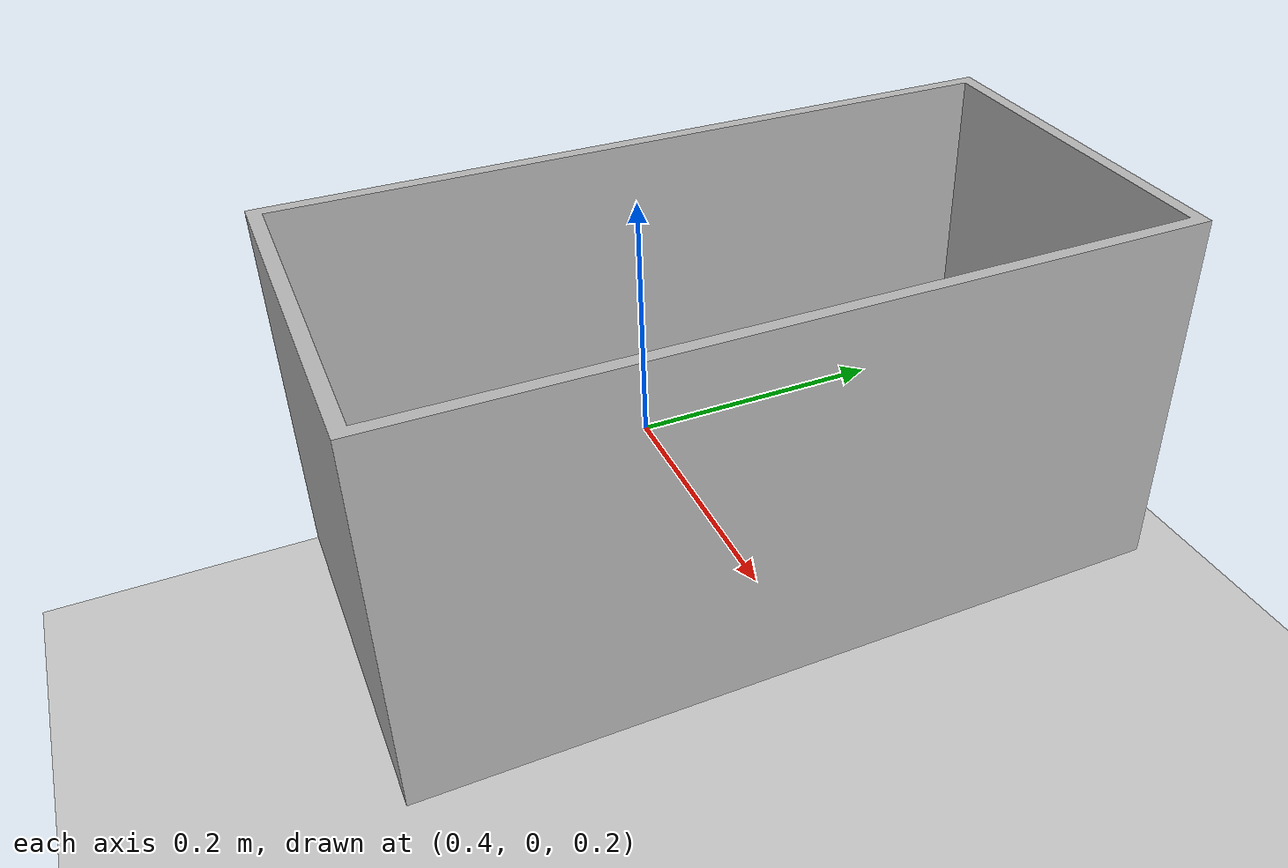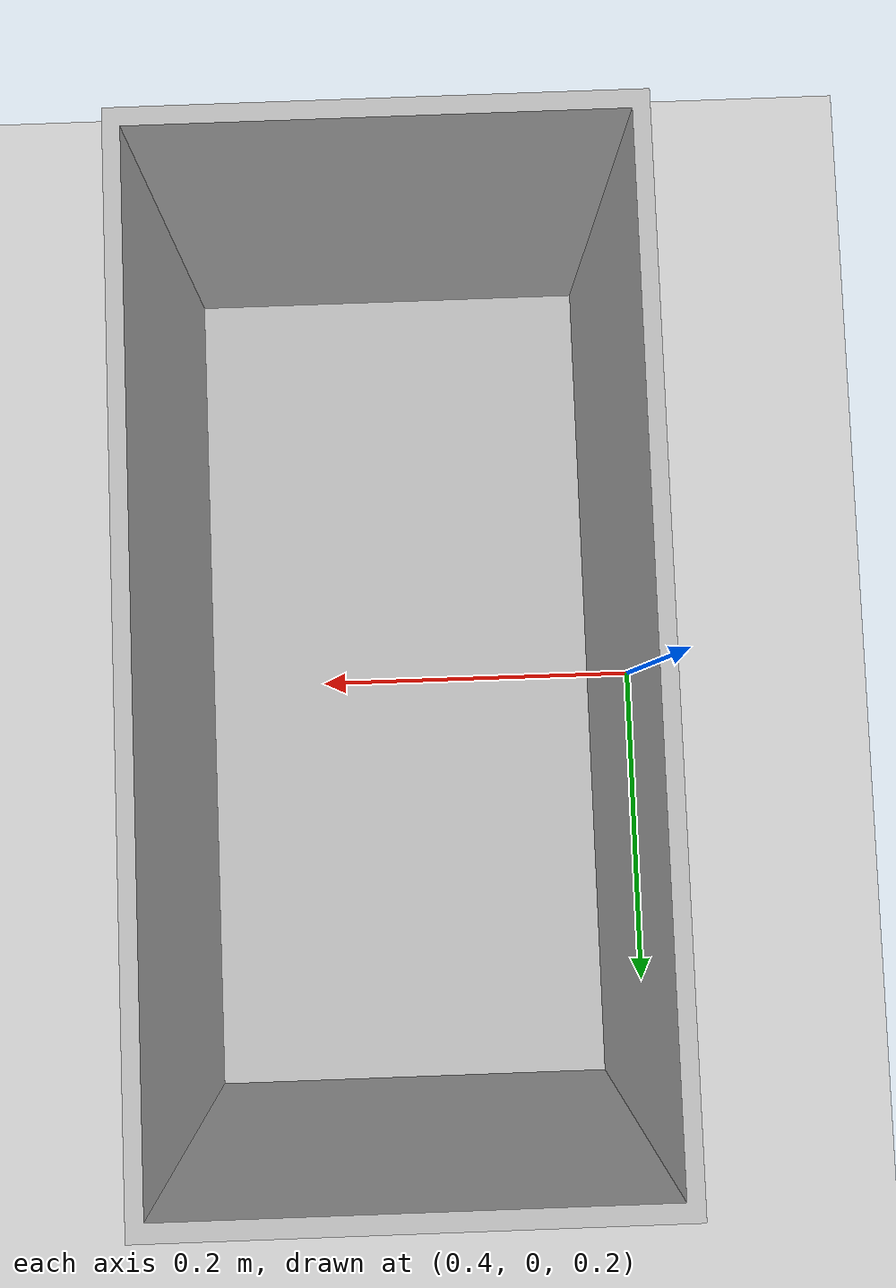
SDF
<?xml version="1.0" ?>
<sdf version="1.6">
  <world name="tsuzuki_world">
    <scene>
      <shadows>true</shadows>
      <ambient>.1 .1 .1 1</ambient>
    </scene>

    <include>
      <uri>model://sun</uri>
    </include>

    <include>
      <uri>model://ground_plane</uri>
    </include>

    <include>
      <name>container</name>
      <uri>model://container</uri>
      <pose>0.55 0. 0.195 0. 0. 0.</pose>
      <static>true</static>
    </include>

    <light name='pt_0' type='point'>
        <pose>1.5 -1.5 2.75 0 0 0</pose>
      <diffuse>85 85 85 255</diffuse>
      <specular>0.02 0.02 0.02 1</specular>
      <attenuation>
        <range>20</range>
        <constant>0.5</constant>
        <linear>0.01</linear>
        <quadratic>0.001</quadratic>
      </attenuation>
      <cast_shadows>0</cast_shadows>
      <direction>0 0 -1</direction>
    </light>

    <light name='pt_1' type='point'>
      <pose>1.5 1.5 2.75 0 0 0</pose>
      <diffuse>85 85 85 255</diffuse>
      <specular>0.02 0.02 0.02 1</specular>
      <attenuation>
        <range>20</range>
        <constant>0.5</constant>
        <linear>0.01</linear>
        <quadratic>0.001</quadratic>
      </attenuation>
      <cast_shadows>0</cast_shadows>
      <direction>0 0 -1</direction>
    </light>

    <light name='pt_2' type='point'>
      <pose>-1.5 1.5 2.75 0 0 0</pose>
      <diffuse>85 85 85 255</diffuse>
      <specular>0.02 0.02 0.02 1</specular>
      <attenuation>
        <range>20</range>
        <constant>0.5</constant>
        <linear>0.01</linear>
        <quadratic>0.001</quadratic>
      </attenuation>
      <cast_shadows>0</cast_shadows>
      <direction>0 0 -1</direction>
    </light>

    <light name='pt_3' type='point'>
      <pose>-1.5 -1.5 2.75 0 0 0</pose>
      <diffuse>85 85 85 255</diffuse>
      <specular>0.02 0.02 0.02 1</specular>
      <attenuation>
        <range>20</range>
        <constant>0.5</constant>
        <linear>0.01</linear>
        <quadratic>0.001</quadratic>
      </attenuation>
      <cast_shadows>0</cast_shadows>
      <direction>0 0 -1</direction>
    </light>

  </world>
</sdf>

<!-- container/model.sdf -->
<sdf version="1.5">
  <model name="container">
    <pose>0 0 0  0 0 0</pose>
    <static>true</static>
    <link name="body">
      <visual name="visual">
        <geometry>
          <mesh><uri>model://container/container.dae</uri></mesh>
        </geometry>
      </visual>
      <collision name="collision">
        <geometry>
          <mesh><uri>model://container/container.dae</uri></mesh>
        </geometry>
      </collision>
    </link>
  </model>
</sdf>
